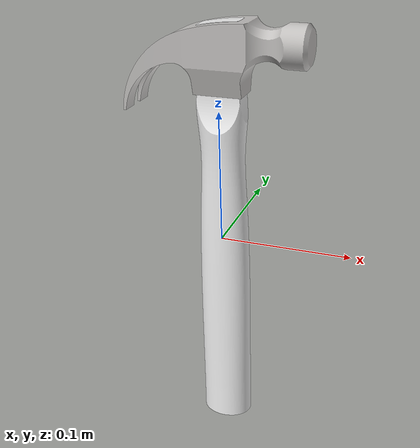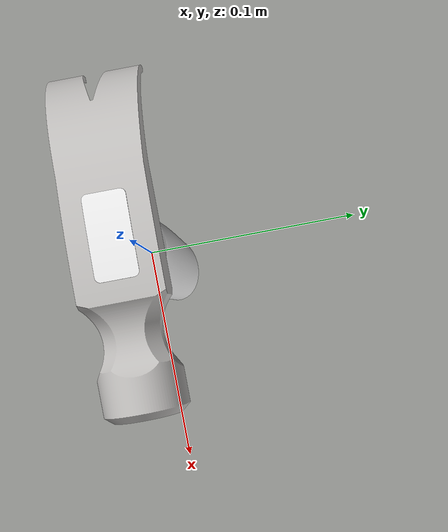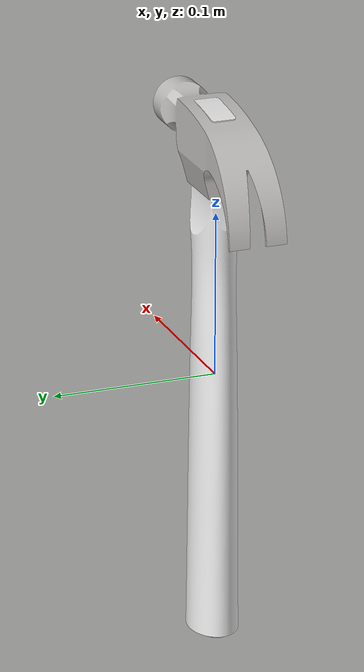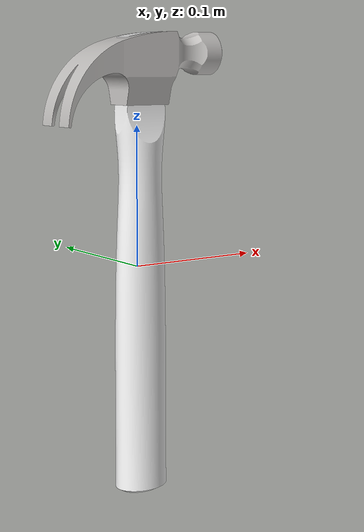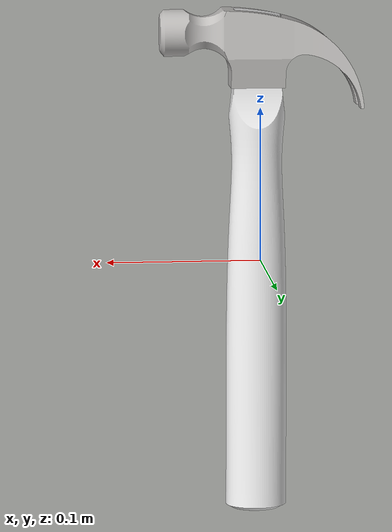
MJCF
<mujoco model="target">
  <compiler meshdir="assets" texturedir="assets" autolimits="true"/>
  <default>
    <default class="visual">
      <geom group="2" type="mesh" contype="0" conaffinity="0"/>
    </default>
    <default class="collision">
      <geom group="3" type="mesh"/>
    </default>
  </default>
  <asset>
    <texture type="2d" name="Woods &amp; Plastics.Finish Carpentry.Wood.White Oak" file="Woods &amp; Plastics.Finish Carpentry.Wood.White Oak.png"/>
    <material name="160,40,0" texture="Woods &amp; Plastics.Finish Carpentry.Wood.White Oak" specular="1.0" shininess="1.0"/>
    <material name="190,188,186" specular="0.7372549999999999" shininess="1.0" rgba="0.745098 0.737255 0.729412 1.000000"/>
    <mesh file="object_0.obj"/>
    <mesh file="object_1.obj"/>
  </asset>
  <worldbody>
    <body name="object">
      <geom mesh="object_0" material="190,188,186" class="visual"/>
      <geom mesh="object_1" material="160,40,0" class="visual"/>
      <geom mesh="object_0" class="collision"/>
      <geom mesh="object_1" class="collision"/>
    </body>
  </worldbody>
</mujoco>
